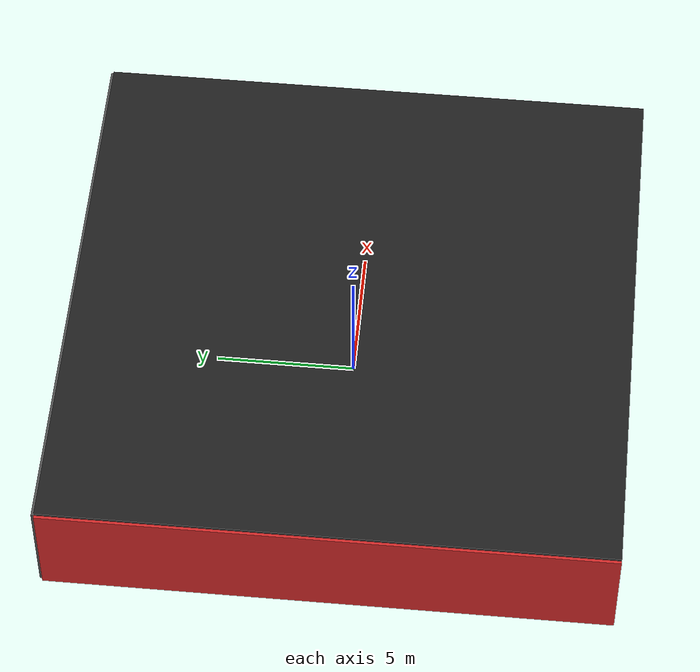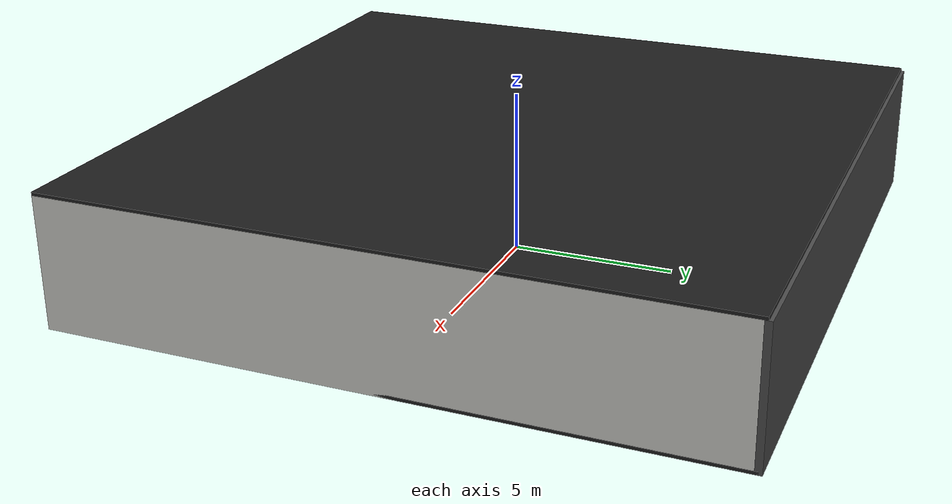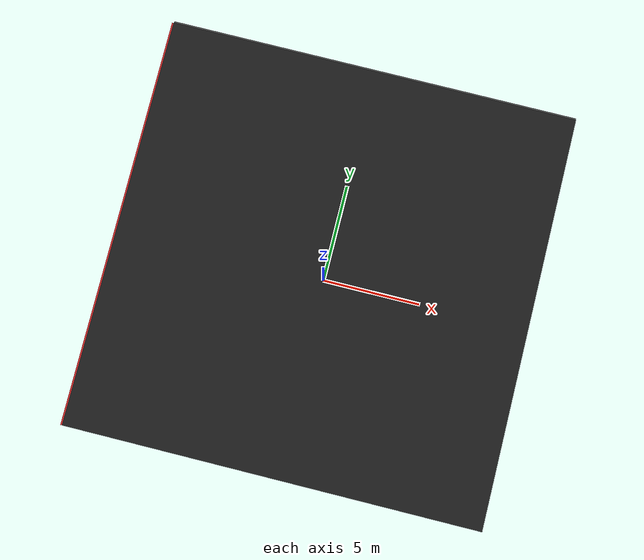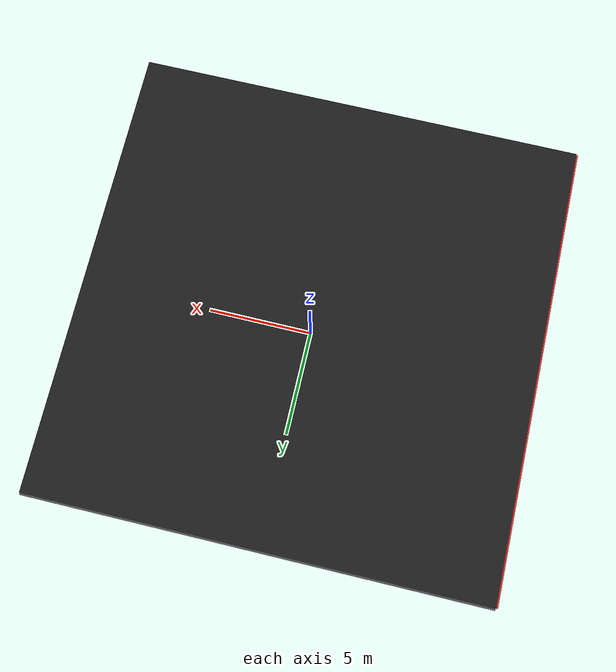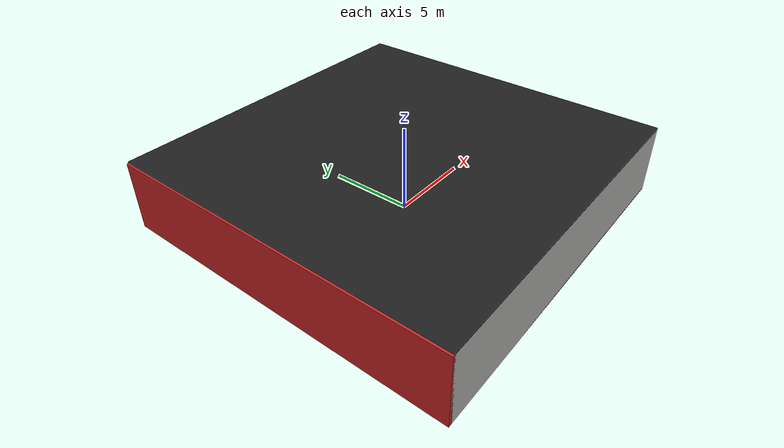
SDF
<sdf version="1.4">
 <world name="default">
  <physics type="ode">
   <max_step_size>0.001</max_step_size>
   <real_time_factor>1</real_time_factor>
   <real_time_update_rate>1000</real_time_update_rate>
   <gravity>0 0 -9.8</gravity>
  </physics>
  <scene><ambient>0.4 0.4 0.4 1</ambient><background>0.7 0.7 0.7 1</background><shadows>1</shadows></scene>
  <model name="Surrounding">
   <static>1</static>
   <link name="Ceiling">
    <collision name="Ceiling_Collision"><geometry><box><size>20 20 0.1</size></box></geometry></collision>
    <visual name="Ceiling_Visual">
     <geometry><box><size>20 20 0.1</size></box></geometry>
     <material>
      <script><uri>file://media/materials/scripts/gazebo.material</uri><name>Gazebo/FlatBlack</name></script>
     </material>
    </visual>
    <pose>0 0 4.05 0 0 0</pose>
   </link>
   <link name="Wall_South">
    <collision name="Wall_South_Collision">
     <geometry><box><size>20 0 4</size></box></geometry>
     <pose>0 0 2 0 -0 0</pose>
    </collision>
    <visual name="Wall_South_Visual">
     <pose>0 0 2 0 -0 0</pose>
     <geometry><box><size>20 0 4</size></box></geometry>
     <material>
      <script><uri>file://media/materials/scripts/gazebo.material</uri><name>Gazebo/CeilingTiled</name></script>
     </material>
    </visual>
    <velocity_decay><linear>0</linear><angular>0</angular></velocity_decay>
    <pose>0 -10 0 0 -0 0</pose>
   </link>
   <link name="Wall_East">
    <collision name="Wall_21_Collision">
     <geometry><box><size>20 0 4</size></box></geometry>
     <pose>0 0 2 0 -0 0</pose>
    </collision>
    <visual name="Wall_21_Visual">
     <pose>0 0 2 0 -0 0</pose>
     <geometry><box><size>20 0 4</size></box></geometry>
     <material>
      <script><uri>file://media/materials/scripts/gazebo.material</uri><name>Gazebo/CeilingTiled</name></script>
     </material>
    </visual>
    <velocity_decay><linear>0</linear><angular>0</angular></velocity_decay>
    <pose>10 0 0 0 -0 1.5708</pose>
   </link>
   <link name="Wall_North">
    <collision name="Wall_22_Collision">
     <geometry><box><size>20 0.2 4</size></box></geometry>
     <pose>0 0 2 0 -0 0</pose>
    </collision>
    <visual name="Wall_22_Visual">
     <pose>0 0 2 0 -0 0</pose>
     <geometry><box><size>20 0.2 4</size></box></geometry>
     <material>
      <script><uri>file://media/materials/scripts/gazebo.material</uri><name>Gazebo/DarkGrey</name></script>
     </material>
    </visual>
    <velocity_decay><linear>0</linear><angular>0</angular></velocity_decay>
    <pose>0 10 0 0 -0 0</pose>
   </link>
   <link name="Wall_West">
    <collision name="Wall_23_Collision">
     <geometry><box><size>20 0.2 4</size></box></geometry>
     <pose>0 0 2 0 -0 0</pose>
    </collision>
    <visual name="Wall_23_Visual">
     <pose>0 0 2 0 -0 0</pose>
     <geometry><box><size>20 0.2 4</size></box></geometry>
     <material>
      <script><uri>file://media/materials/scripts/gazebo.material</uri><name>Gazebo/RedGlow</name></script>
     </material>
    </visual>
    <velocity_decay><linear>0</linear><angular>0</angular></velocity_decay>
    <pose>-10 0 0 0 0 -1.5708</pose>
   </link>
   <link name="Ground_link">
    <collision name="collision">
     <pose>0 0 .05 0 -0 0</pose>
     <geometry><box><size>20 20 0.1</size></box></geometry>
    </collision>
    <visual name="visual">
     <pose>0 0 .05 0 -0 0</pose>
     <geometry><box><size>20 20 0.1</size></box></geometry>
     <material>
      <script><uri>file://media/materials/scripts/gazebo.material</uri><name>Gazebo/Black</name></script>
     </material>
    </visual>
   </link>
   <static>1</static>
  </model>
  <spherical_coordinates>
   <surface_model>EARTH_WGS84</surface_model>
   <latitude_deg>0</latitude_deg>
   <longitude_deg>0</longitude_deg>
   <elevation>0</elevation>
   <heading_deg>0</heading_deg>
  </spherical_coordinates>
  <light name="lightball_0" type="diffuse">
   <diffuse>0.8 0.8 0.8 1</diffuse>
   <specular>0.2 0.2 0.2 1</specular>
   <attenuation>
    <range>100</range>
    <constant>0.7</constant>
    <linear>0.01</linear>
    <quadratic>0.001</quadratic>
   </attenuation>
   <direction>-0.5 0.1 -0.9</direction>
   <pose>1.66939919764 -3.4232606765 3.16016453446 0 0 0</pose>
  </light>
  <light name="lightball_1" type="diffuse">
   <diffuse>0.8 0.8 0.8 1</diffuse>
   <specular>0.2 0.2 0.2 1</specular>
   <attenuation>
    <range>100</range>
    <constant>0.7</constant>
    <linear>0.01</linear>
    <quadratic>0.001</quadratic>
   </attenuation>
   <direction>-0.5 0.1 -0.9</direction>
   <pose>0.709634712179 7.92500891515 1.40402037936 0 0 0</pose>
  </light>
  <light name="lightball_2" type="diffuse">
   <diffuse>0.8 0.8 0.8 1</diffuse>
   <specular>0.2 0.2 0.2 1</specular>
   <attenuation>
    <range>100</range>
    <constant>0.7</constant>
    <linear>0.01</linear>
    <quadratic>0.001</quadratic>
   </attenuation>
   <direction>-0.5 0.1 -0.9</direction>
   <pose>-0.693741337714 -2.47073119946 2.89863477511 0 0 0</pose>
  </light>
  <light name="lightball_3" type="diffuse">
   <diffuse>0.8 0.8 0.8 1</diffuse>
   <specular>0.2 0.2 0.2 1</specular>
   <attenuation>
    <range>100</range>
    <constant>0.7</constant>
    <linear>0.01</linear>
    <quadratic>0.001</quadratic>
   </attenuation>
   <direction>-0.5 0.1 -0.9</direction>
   <pose>7.28461127018 -4.17022673619 2.32360950425 0 0 0</pose>
  </light>
  <light name="lightball_4" type="diffuse">
   <diffuse>0.8 0.8 0.8 1</diffuse>
   <specular>0.2 0.2 0.2 1</specular>
   <attenuation>
    <range>100</range>
    <constant>0.7</constant>
    <linear>0.01</linear>
    <quadratic>0.001</quadratic>
   </attenuation>
   <direction>-0.5 0.1 -0.9</direction>
   <pose>-4.70403838123 -9.36980587752 0.685406694478 0 0 0</pose>
  </light>
  <light name="lightball_5" type="diffuse">
   <diffuse>0.8 0.8 0.8 1</diffuse>
   <specular>0.2 0.2 0.2 1</specular>
   <attenuation>
    <range>100</range>
    <constant>0.7</constant>
    <linear>0.01</linear>
    <quadratic>0.001</quadratic>
   </attenuation>
   <direction>-0.5 0.1 -0.9</direction>
   <pose>-8.61877059487 4.53777099781 1.51392252315 0 0 0</pose>
  </light>
  <light name="lightball_6" type="diffuse">
   <diffuse>0.8 0.8 0.8 1</diffuse>
   <specular>0.2 0.2 0.2 1</specular>
   <attenuation>
    <range>100</range>
    <constant>0.7</constant>
    <linear>0.01</linear>
    <quadratic>0.001</quadratic>
   </attenuation>
   <direction>-0.5 0.1 -0.9</direction>
   <pose>7.07317780216 -6.74273254894 0.63409005296 0 0 0</pose>
  </light>
  <light name="lightball_7" type="diffuse">
   <diffuse>0.8 0.8 0.8 1</diffuse>
   <specular>0.2 0.2 0.2 1</specular>
   <attenuation>
    <range>100</range>
    <constant>0.7</constant>
    <linear>0.01</linear>
    <quadratic>0.001</quadratic>
   </attenuation>
   <direction>-0.5 0.1 -0.9</direction>
   <pose>-5.97894401856 1.7907492637 3.47463503115 0 0 0</pose>
  </light>
  <light name="lightball_8" type="diffuse">
   <diffuse>0.8 0.8 0.8 1</diffuse>
   <specular>0.2 0.2 0.2 1</specular>
   <attenuation>
    <range>100</range>
    <constant>0.7</constant>
    <linear>0.01</linear>
    <quadratic>0.001</quadratic>
   </attenuation>
   <direction>-0.5 0.1 -0.9</direction>
   <pose>9.06921367788 1.92977411475 0.621876691043 0 0 0</pose>
  </light>
  <light name="lightball_9" type="diffuse">
   <diffuse>0.8 0.8 0.8 1</diffuse>
   <specular>0.2 0.2 0.2 1</specular>
   <attenuation>
    <range>100</range>
    <constant>0.7</constant>
    <linear>0.01</linear>
    <quadratic>0.001</quadratic>
   </attenuation>
   <direction>-0.5 0.1 -0.9</direction>
   <pose>-6.20220570639 7.13825365522 3.4003418398 0 0 0</pose>
  </light>
  <light name="lightball_10" type="diffuse">
   <diffuse>0.8 0.8 0.8 1</diffuse>
   <specular>0.2 0.2 0.2 1</specular>
   <attenuation>
    <range>100</range>
    <constant>0.7</constant>
    <linear>0.01</linear>
    <quadratic>0.001</quadratic>
   </attenuation>
   <direction>-0.5 0.1 -0.9</direction>
   <pose>-9.10094982544 3.28678131682 2.1564859704 0 0 0</pose>
  </light>
  <light name="lightball_11" type="diffuse">
   <diffuse>0.8 0.8 0.8 1</diffuse>
   <specular>0.2 0.2 0.2 1</specular>
   <attenuation>
    <range>100</range>
    <constant>0.7</constant>
    <linear>0.01</linear>
    <quadratic>0.001</quadratic>
   </attenuation>
   <direction>-0.5 0.1 -0.9</direction>
   <pose>-8.74345075635 -4.1720003129 2.3377306911 0 0 0</pose>
  </light>
  <light name="lightball_12" type="diffuse">
   <diffuse>0.8 0.8 0.8 1</diffuse>
   <specular>0.2 0.2 0.2 1</specular>
   <attenuation>
    <range>100</range>
    <constant>0.7</constant>
    <linear>0.01</linear>
    <quadratic>0.001</quadratic>
   </attenuation>
   <direction>-0.5 0.1 -0.9</direction>
   <pose>1.47257310176 -2.3652780204 3.26129117875 0 0 0</pose>
  </light>
  <include><uri>model://cabinet</uri><pose>5.24005847343 -5.0424788263 0 0 0 1.67793530599</pose></include>
  <include><uri>model://cabinet</uri><pose>4.65375279431 5.28740271195 0 0 0 2.50389485179</pose></include>
  <include><uri>model://cabinet</uri><pose>8.25900933351 -7.18919555714 0 0 0 3.06433883118</pose></include>
  <include>
   <uri>model://construction_cone</uri>
   <pose>7.69795478635 2.15954585582 0 0 0 1.94934832478</pose>
  </include>
 </world>
</sdf>

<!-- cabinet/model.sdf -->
<sdf version="1.5">
  <model name="cabinet">
    <static>true</static>
    <link name="cabinet_bottom_plate">
      <inertial>
        <pose>0 0 -1 0 0 0</pose>
        <inertia>
          <ixx>2.050000</ixx>
          <ixy>0</ixy>
          <ixz>0</ixz>
          <iyy>2.050000</iyy>
          <iyz>0</iyz>
          <izz>2.050000</izz>
        </inertia>
        <mass>25.000000</mass>
      </inertial>
      <collision name="cabinet_bottom_plate_geom">
        <pose>0 0 0.010000 0 0 0</pose>
        <geometry>
          <box>
            <size>0.450000 0.450000 0.020000</size>
          </box>
        </geometry>
      </collision>
      <visual name="cabinet_bottom_plate_geom_visual">
        <pose>0 0 0.010000 0 0 0</pose>
        <geometry>
          <box>
            <size>0.450000 0.450000 0.020000</size>
          </box>
        </geometry>
        <material>
          <script>
            <uri>model://media/materials/scripts/gazebo.material</uri>
            <name>Gazebo/Wood</name>
          </script>
        </material>
      </visual>
      <collision name="cabinet_bottom_plate_geom_cabinet_back_plate">
        <pose>0.235000 0 0.510000 0 0 0</pose>
        <geometry>
          <box>
            <size>0.020000 0.450000 1.020000</size>
          </box>
        </geometry>
      </collision>
      <visual name="cabinet_bottom_plate_geom_cabinet_back_plate_visual">
        <pose>0.235000 0 0.510000 0 0 0</pose>
        <geometry>
          <box>
            <size>0.020000 0.450000 1.020000</size>
          </box>
        </geometry>
        <material>
          <script>
            <uri>model://media/materials/scripts/gazebo.material</uri>
            <name>Gazebo/Wood</name>
          </script>
        </material>
      </visual>
      <collision name="cabinet_bottom_plate_geom_cabinet_left_plate">
        <pose>0 0.235000 0.510000 0 0 0</pose>
        <geometry>
          <box>
            <size>0.450000 0.020000 1.020000</size>
          </box>
        </geometry>
      </collision>
      <visual name="cabinet_bottom_plate_geom_cabinet_left_plate_visual">
        <pose>0 0.235000 0.510000 0 0 0</pose>
        <geometry>
          <box>
            <size>0.450000 0.020000 1.020000</size>
          </box>
        </geometry>
        <material>
          <script>
            <uri>model://media/materials/scripts/gazebo.material</uri>
            <name>Gazebo/Wood</name>
          </script>
        </material>
      </visual>
      <collision name="cabinet_bottom_plate_geom_cabinet_middle_plate">
        <pose>0 0 0.510000 0 0 0</pose>
        <geometry>
          <box>
            <size>0.450000 0.450000 0.020000</size>
          </box>
        </geometry>
      </collision>
      <visual name="cabinet_bottom_plate_geom_cabinet_middle_plate_visual">
        <pose>0 0 0.510000 0 0 0</pose>
        <geometry>
          <box>
            <size>0.450000 0.450000 0.020000</size>
          </box>
        </geometry>
        <material>
          <script>
            <uri>model://media/materials/scripts/gazebo.material</uri>
            <name>Gazebo/Wood</name>
          </script>
        </material>
      </visual>
      <collision name="cabinet_bottom_plate_geom_cabinet_right_plate">
        <pose>0 -0.235000 0.510000 0 0 0</pose>
        <geometry>
          <box>
            <size>0.450000 0.020000 1.020000</size>
          </box>
        </geometry>
      </collision>
      <visual name="cabinet_bottom_plate_geom_cabinet_right_plate_visual">
        <pose>0 -0.235000 0.510000 0 0 0</pose>
        <geometry>
          <box>
            <size>0.450000 0.020000 1.020000</size>
          </box>
        </geometry>
        <material>
          <script>
            <uri>model://media/materials/scripts/gazebo.material</uri>
            <name>Gazebo/Wood</name>
          </script>
        </material>
      </visual>
      <collision name="cabinet_bottom_plate_geom_cabinet_top_plate">
        <pose>0 0 1.010000 0 0 0</pose>
        <geometry>
          <box>
            <size>0.450000 0.450000 0.020000</size>
          </box>
        </geometry>
      </collision>
      <visual name="cabinet_bottom_plate_geom_cabinet_top_plate_visual">
        <pose>0 0 1.010000 0 0 0</pose>
        <geometry>
          <box>
            <size>0.450000 0.450000 0.020000</size>
          </box>
        </geometry>
        <material>
          <script>
            <uri>model://media/materials/scripts/gazebo.material</uri>
            <name>Gazebo/Wood</name>
          </script>
        </material>
      </visual>
    </link>
  </model>
</sdf>

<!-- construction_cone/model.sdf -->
<sdf version="1.5">
  <model name="Construction Cone">
    <link name="link">
      <collision name="collision">
        <geometry>
          <mesh>
            <scale>10 10 10</scale>
            <uri>file://isr-testbed/construction_cone/meshes/construction_cone.dae</uri>
          </mesh>
        </geometry>
      </collision>
      <visual name="visual">
        <geometry>
          <mesh>
            <scale>10 10 10</scale>
            <uri>file://isr-testbed/construction_cone/meshes/construction_cone.dae</uri>
          </mesh>
        </geometry>
      </visual>
    </link>
  </model>
</sdf>
